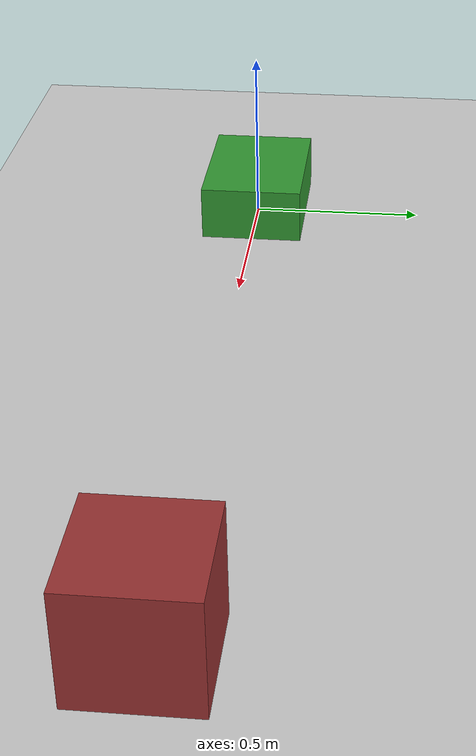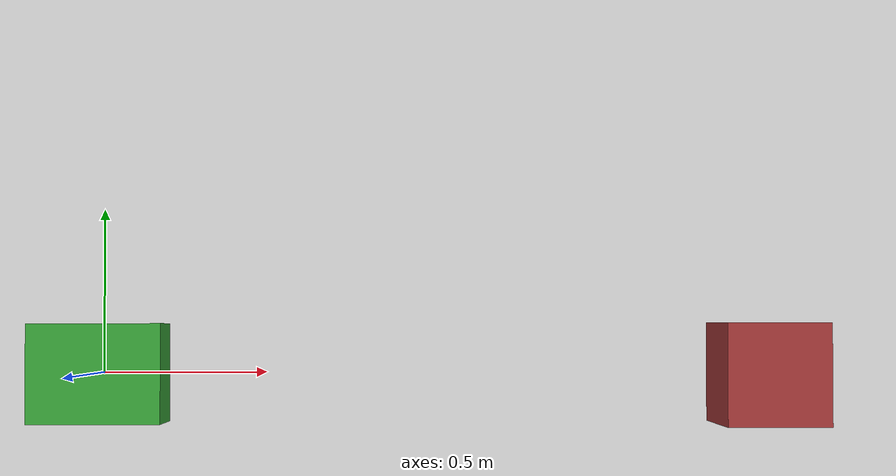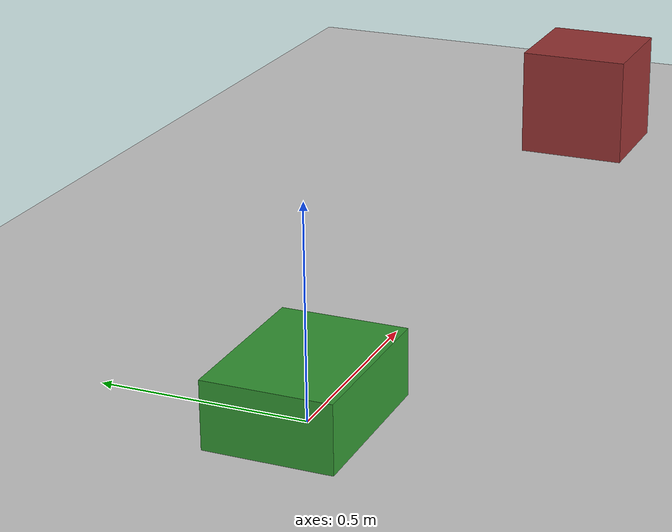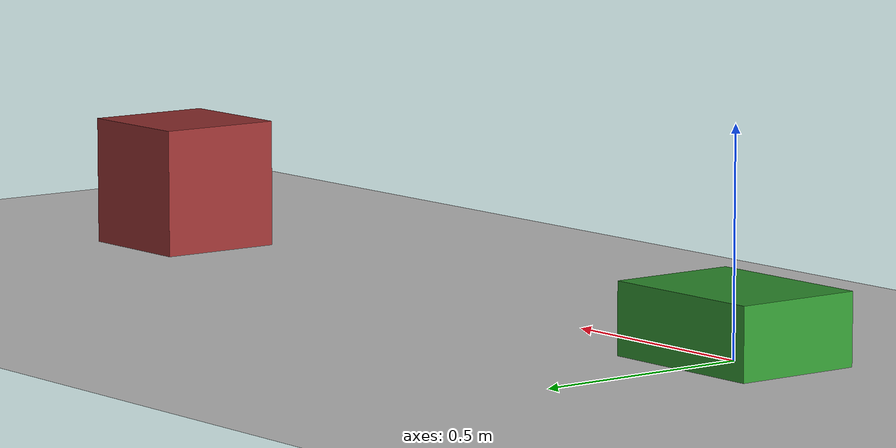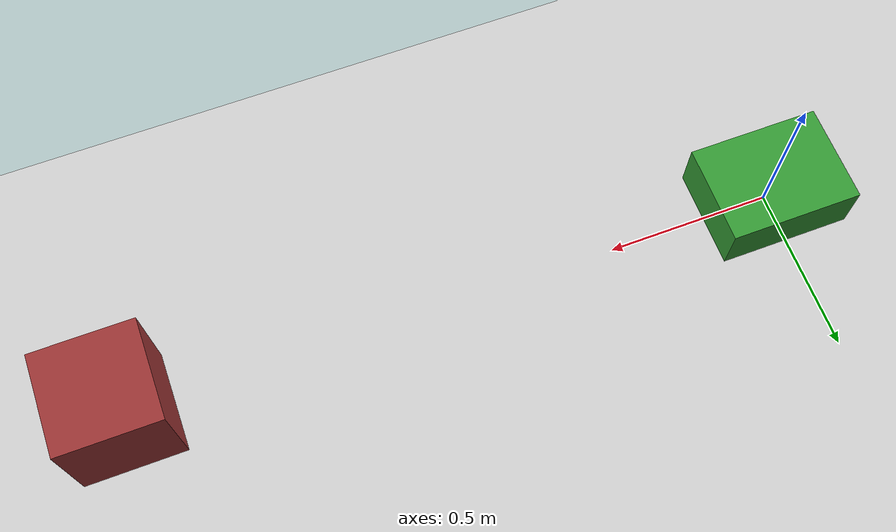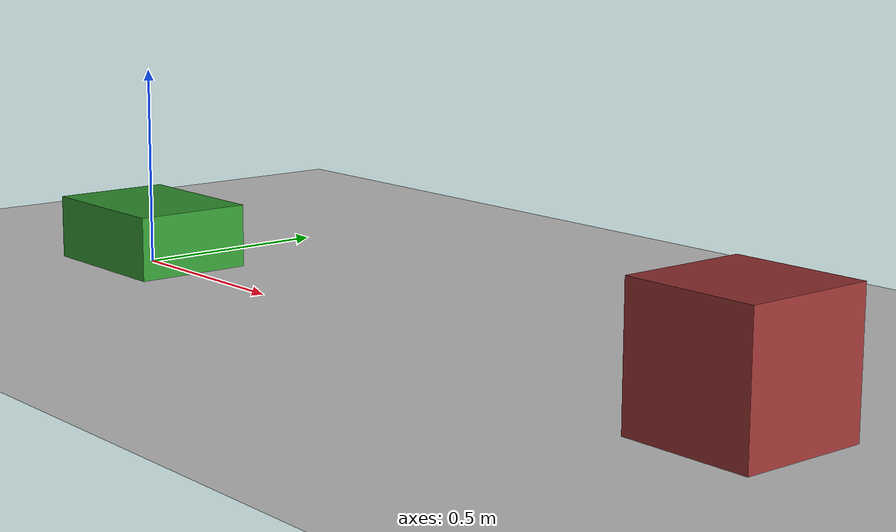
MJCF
<mujoco model="tank_minimal">
  <option timestep="0.002" gravity="0 0 -9.81"/>

  <default>
    <geom friction="1.0 0.005 0.0001" contype="1" conaffinity="1"
        solref="0.02 1" solimp="0.9 0.95 0.001"/>
  </default>

  <worldbody>
    <!-- 조명 및 바닥 -->
    <light diffuse="0.8 0.8 0.8" pos="0 0 5" dir="0 0 -1"/>
    <geom name="floor" type="plane" size="10 10 0.1" rgba="0.8 0.8 0.8 1"/>

    <!-- 탱크 몸체: freejoint로 자유롭게 움직이게 -->
    <body name="tank_body" pos="0 0 0.08">
      <freejoint/>
      <geom name="tank_geom" type="box" size="0.2 0.15 0.08"
            rgba="0.2 0.6 0.2 1" mass="5"/>
    </body>

    <!-- 장애물 테스트용 박스 -->
    <body name="obstacle1" pos="2 0 0.15">
      <geom type="box" size="0.15 0.15 0.15" rgba="0.6 0.2 0.2 1"/>
    </body>
  </worldbody>
</mujoco>
